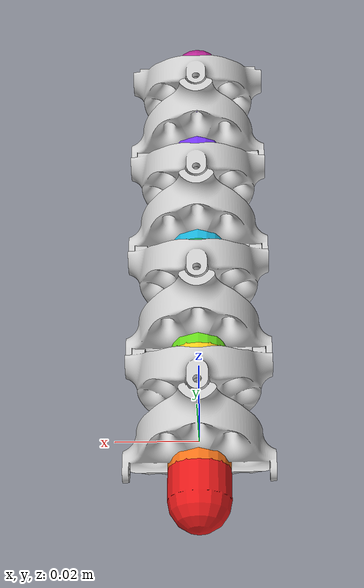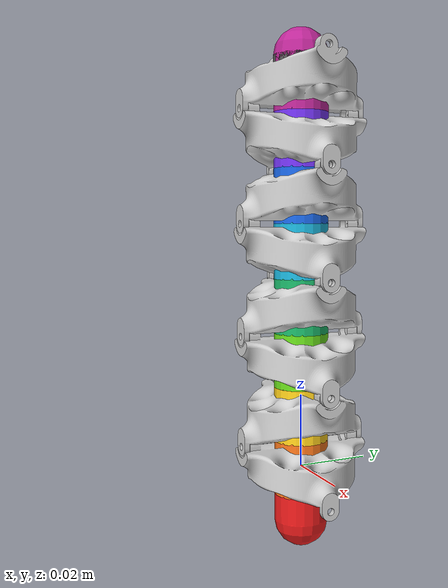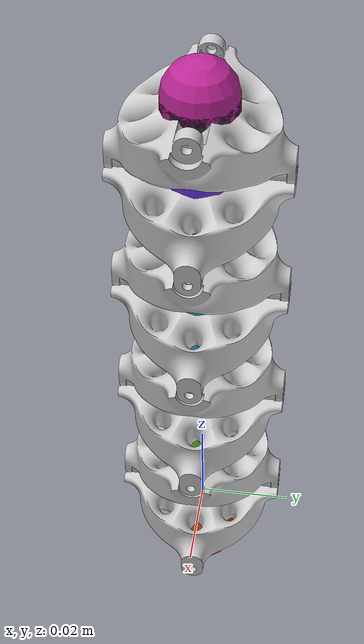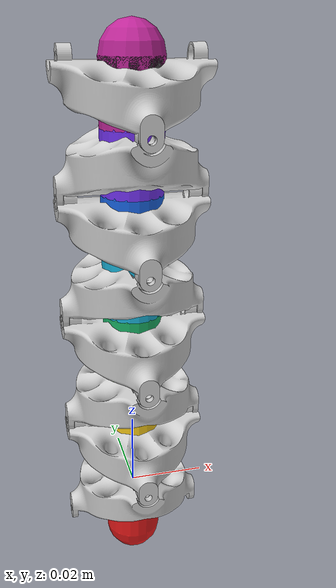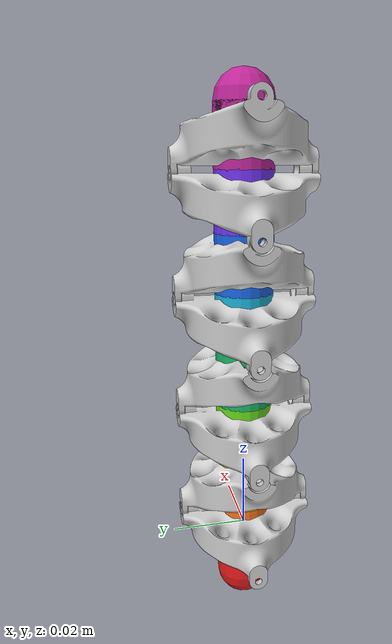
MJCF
<?xml version="1.0"?>
<mujoco model="continuum_robot">
    <compiler angle="degree" coordinate="local"/>
    <option integrator="Euler" timestep="0.001"/>

    <default>
      <joint limited="true" range="-4 4" stiffness="0.04" damping="0.005" armature="0.0001"/>

    <!-- 백본(캡슐): 서로는 비충돌, 프록시와만 충돌 -->
      <geom type="capsule" size="0.0075" density="1000"
          friction="0.6 0.05 0.002"
          rgba="0.8 0.8 0.8 1"
          contype="2" conaffinity="1"
          margin="0.001" solimp="0.9 0.995 0.001" solref="0.02 1"/>

      <!-- 프록시(충돌 전용 슬리브) 공통 속성 -->
      <default class="proxy">
        <geom type="cylinder"
              contype="1" conaffinity="2"
              margin="0.001" solimp="0.9 0.995 0.001" solref="0.02 1"
              rgba="0.2 0.8 1 0.15" group="3"/> <!-- 보기 불편하면 Group 3 끄기 -->
      </default>

      <!-- STL(시각용) 공통 속성: 충돌 off -->
      <default class="comp">
        <geom contype="0" conaffinity="0"/>
      </default>
    </default>

    <asset>
      <mesh name="mesh_component2" file="meshes/mesh_component2.stl" scale="0.001 0.001 0.001" /> <!-- The mesh file for the component -->
    </asset>
    <worldbody>
      <body name="comp_root" pos="0 0 0" quat="1 0 0 0">
        <geom name="geom_comp_root" class="comp" type="mesh" mesh="mesh_component2" pos="0 0 0"/>
        <joint name="rotation_root" type="hinge" axis="1 0 0" pos="0.01794 0 -0.0075" />
        <inertial mass="0.034962578305385045" pos="-7.472585541467528e-08 7.901881324749933e-09 0.00013813391178014084" fullinertia="3.055182113221844e-06 2.848652002682884e-06 5.213750324900917e-06 -4.694970745810055e-12 -1.2612174129223041e-11 1.8838018378797825e-12" />
        <geom class="proxy" name="proxy_root_0" type="capsule" size="0.0008 0.004" pos=" 0.007500  0.000000 0"/>
        <geom class="proxy" name="proxy_root_1" type="capsule" size="0.0008 0.004" pos=" 0.005303  0.005303 0"/>
        <geom class="proxy" name="proxy_root_2" type="capsule" size="0.0008 0.004" pos=" 0.000000  0.007500 0"/>
        <geom class="proxy" name="proxy_root_3" type="capsule" size="0.0008 0.004" pos="-0.005303  0.005303 0"/>
        <geom class="proxy" name="proxy_root_4" type="capsule" size="0.0008 0.004" pos="-0.007500  0.000000 0"/>
        <geom class="proxy" name="proxy_root_5" type="capsule" size="0.0008 0.004" pos="-0.005303 -0.005303 0"/>
        <geom class="proxy" name="proxy_root_6" type="capsule" size="0.0008 0.004" pos=" 0.000000 -0.007500 0"/>
        <geom class="proxy" name="proxy_root_7" type="capsule" size="0.0008 0.004" pos=" 0.005303 -0.005303 0"/>

        <body name="comp_1" pos="0 0 0.015" quat="0.70710678 0 0 -0.70710678">
          <joint name="rotation_1" type="hinge" axis="1 0 0" pos="0.01794 0 -0.0075" /> <!--joint axis: 이 조인트가 어느 방향으로 움직이는지, pos: 조인트의 앵커(회전/이동이 일어나는 점) 위치-->
          <geom name="geom_comp_1" class="comp" type="mesh" mesh="mesh_component2" pos="0 0 0" quat="1 0 0 0"/>
          <inertial mass="0.034962578305385045" pos="-7.472585541454448e-08 7.901881324746635e-09 0.00013813391178014496" fullinertia="3.0551821132218284e-06 2.8486520026829268e-06 5.213750324900907e-06 -4.694970745810085e-12 -1.2612174121400085e-11 1.8838018376833885e-12" />
          <geom class="proxy" name="proxy_1_0" type="capsule" size="0.0008 0.004" pos=" 0.007500  0.000000 0"/>
          <geom class="proxy" name="proxy_1_1" type="capsule" size="0.0008 0.004" pos=" 0.005303  0.005303 0"/>
          <geom class="proxy" name="proxy_1_2" type="capsule" size="0.0008 0.004" pos=" 0.000000  0.007500 0"/>
          <geom class="proxy" name="proxy_1_3" type="capsule" size="0.0008 0.004" pos="-0.005303  0.005303 0"/>
          <geom class="proxy" name="proxy_1_4" type="capsule" size="0.0008 0.004" pos="-0.007500  0.000000 0"/>
          <geom class="proxy" name="proxy_1_5" type="capsule" size="0.0008 0.004" pos="-0.005303 -0.005303 0"/>
          <geom class="proxy" name="proxy_1_6" type="capsule" size="0.0008 0.004" pos=" 0.000000 -0.007500 0"/>
          <geom class="proxy" name="proxy_1_7" type="capsule" size="0.0008 0.004" pos=" 0.005303 -0.005303 0"/>

          <body name="comp_2" pos="0 0 0.015" quat="0.70710678 0 0 0.70710678">
            <joint name="rotation_2" type="hinge" axis="1 0 0" pos="0.01794 0 -0.0075" />
            <geom name="geom_comp_2" class="comp" type="mesh" mesh="mesh_component2" pos="0 0 0" quat="1 0 0 0"/>
            <inertial mass="0.034962578305385045" pos="-7.472585541454448e-08 7.901881324746635e-09 0.00013813391178014273" fullinertia="3.0551821132218267e-06 2.84865200268293e-06 5.213750324900907e-06 -4.694970745810085e-12 -1.2612174121400085e-11 1.8838018376833877e-12" />
            <geom class="proxy" name="proxy_2_0" type="capsule" size="0.0008 0.004" pos=" 0.007500  0.000000 0"/>
            <geom class="proxy" name="proxy_2_1" type="capsule" size="0.0008 0.004" pos=" 0.005303  0.005303 0"/>
            <geom class="proxy" name="proxy_2_2" type="capsule" size="0.0008 0.004" pos=" 0.000000  0.007500 0"/>
            <geom class="proxy" name="proxy_2_3" type="capsule" size="0.0008 0.004" pos="-0.005303  0.005303 0"/>
            <geom class="proxy" name="proxy_2_4" type="capsule" size="0.0008 0.004" pos="-0.007500  0.000000 0"/>
            <geom class="proxy" name="proxy_2_5" type="capsule" size="0.0008 0.004" pos="-0.005303 -0.005303 0"/>
            <geom class="proxy" name="proxy_2_6" type="capsule" size="0.0008 0.004" pos=" 0.000000 -0.007500 0"/>
            <geom class="proxy" name="proxy_2_7" type="capsule" size="0.0008 0.004" pos=" 0.005303 -0.005303 0"/>

            <body name="comp_3" pos="0 0 0.015" quat="0.70710678 0 0 -0.70710678">
              <joint name="rotation_3" type="hinge" axis="1 0 0" pos="0.01794 0 -0.0075" />
              <geom name="geom_comp_3" class="comp" type="mesh" mesh="mesh_component2" pos="0 0 0" quat="1 0 0 0"/>
              <inertial mass="0.034962578305385045" pos="-7.47258554145445e-08 7.901881324746637e-09 0.00013813391178014273" fullinertia="3.0551821132218403e-06 2.84865200268293e-06 5.213750324900907e-06 -4.694970745810085e-12 -1.2612174121400085e-11 1.883801837683387e-12" />
              <geom class="proxy" name="proxy_3_0" type="capsule" size="0.0008 0.004" pos=" 0.007500  0.000000 0"/>
              <geom class="proxy" name="proxy_3_1" type="capsule" size="0.0008 0.004" pos=" 0.005303  0.005303 0"/>
              <geom class="proxy" name="proxy_3_2" type="capsule" size="0.0008 0.004" pos=" 0.000000  0.007500 0"/>
              <geom class="proxy" name="proxy_3_3" type="capsule" size="0.0008 0.004" pos="-0.005303  0.005303 0"/>
              <geom class="proxy" name="proxy_3_4" type="capsule" size="0.0008 0.004" pos="-0.007500  0.000000 0"/>
              <geom class="proxy" name="proxy_3_5" type="capsule" size="0.0008 0.004" pos="-0.005303 -0.005303 0"/>
              <geom class="proxy" name="proxy_3_6" type="capsule" size="0.0008 0.004" pos=" 0.000000 -0.007500 0"/>
              <geom class="proxy" name="proxy_3_7" type="capsule" size="0.0008 0.004" pos=" 0.005303 -0.005303 0"/>

              <body name="comp_4" pos="0 0 0.015" quat="0.70710678 0 0 0.70710678">
                <joint name="rotation_4" type="hinge" axis="1 0 0" pos="0.01794 0 -0.0075" />
                <geom name="geom_comp_4" class="comp" type="mesh" mesh="mesh_component2" pos="0 0 0" quat="1 0 0 0"/>
                <inertial mass="0.034962578305385045" pos="-7.472585541454448e-08 7.901881324015413e-09 0.00013813391178015038" fullinertia="3.055182113221813e-06 2.8486520026828874e-06 5.213750324900898e-06 -4.69497074581008e-12 -1.2612174121400061e-11 1.8838018335764905e-12" />
                <geom class="proxy" name="proxy_4_0" type="capsule" size="0.0008 0.004" pos=" 0.007500  0.000000 0"/>
                <geom class="proxy" name="proxy_4_1" type="capsule" size="0.0008 0.004" pos=" 0.005303  0.005303 0"/>
                <geom class="proxy" name="proxy_4_2" type="capsule" size="0.0008 0.004" pos=" 0.000000  0.007500 0"/>
                <geom class="proxy" name="proxy_4_3" type="capsule" size="0.0008 0.004" pos="-0.005303  0.005303 0"/>
                <geom class="proxy" name="proxy_4_4" type="capsule" size="0.0008 0.004" pos="-0.007500  0.000000 0"/>
                <geom class="proxy" name="proxy_4_5" type="capsule" size="0.0008 0.004" pos="-0.005303 -0.005303 0"/>
                <geom class="proxy" name="proxy_4_6" type="capsule" size="0.0008 0.004" pos=" 0.000000 -0.007500 0"/>
                <geom class="proxy" name="proxy_4_7" type="capsule" size="0.0008 0.004" pos=" 0.005303 -0.005303 0"/>

                <body name="comp_5" pos="0 0 0.015" quat="0.70710678 0 0 -0.70710678">
                  <joint name="rotation_5" type="hinge" axis="1 0 0" pos="0.01794 0 -0.0075" />
                  <geom name="geom_comp_5" class="comp" type="mesh" mesh="mesh_component2" pos="0 0 0" quat="1 0 0 0"/>
                  <inertial mass="0.034962578305385045" pos="-7.472585541496629e-08 7.901881324746634e-09 0.0001381339117801356" fullinertia="3.0551821132218623e-06 2.8486520026829437e-06 5.213750324900904e-06 -4.694970745810083e-12 -1.261217412324965e-11 1.883801837683382e-12" />
                  <geom class="proxy" name="proxy_5_0" type="capsule" size="0.0008 0.004" pos=" 0.007500  0.000000 0"/>
                  <geom class="proxy" name="proxy_5_1" type="capsule" size="0.0008 0.004" pos=" 0.005303  0.005303 0"/>
                  <geom class="proxy" name="proxy_5_2" type="capsule" size="0.0008 0.004" pos=" 0.000000  0.007500 0"/>
                  <geom class="proxy" name="proxy_5_3" type="capsule" size="0.0008 0.004" pos="-0.005303  0.005303 0"/>
                  <geom class="proxy" name="proxy_5_4" type="capsule" size="0.0008 0.004" pos="-0.007500  0.000000 0"/>
                  <geom class="proxy" name="proxy_5_5" type="capsule" size="0.0008 0.004" pos="-0.005303 -0.005303 0"/>
                  <geom class="proxy" name="proxy_5_6" type="capsule" size="0.0008 0.004" pos=" 0.000000 -0.007500 0"/>
                  <geom class="proxy" name="proxy_5_7" type="capsule" size="0.0008 0.004" pos=" 0.005303 -0.005303 0"/>

                  <body name="comp_6" pos="0 0 0.015" quat="0.70710678 0 0 0.70710678">
                    <joint name="rotation_6" type="hinge" axis="1 0 0" pos="0.01794 0 -0.0075" />
                    <geom name="geom_comp_6" class="comp" type="mesh" mesh="mesh_component2" pos="0 0 0" quat="1 0 0 0"/>
                    <inertial mass="0.034962578305385045" pos="-7.472585541454451e-08 7.901881323397079e-09 0.00013813391178015924" fullinertia="3.0551821132217047e-06 2.8486520026828886e-06 5.213750324900898e-06 -4.6949707458100755e-12 -1.261217412140013e-11 1.883801832570639e-12" />
                    <geom class="proxy" name="proxy_6_0" type="capsule" size="0.0008 0.004" pos=" 0.007500  0.000000 0"/>
                    <geom class="proxy" name="proxy_6_1" type="capsule" size="0.0008 0.004" pos=" 0.005303  0.005303 0"/>
                    <geom class="proxy" name="proxy_6_2" type="capsule" size="0.0008 0.004" pos=" 0.000000  0.007500 0"/>
                    <geom class="proxy" name="proxy_6_3" type="capsule" size="0.0008 0.004" pos="-0.005303  0.005303 0"/>
                    <geom class="proxy" name="proxy_6_4" type="capsule" size="0.0008 0.004" pos="-0.007500  0.000000 0"/>
                    <geom class="proxy" name="proxy_6_5" type="capsule" size="0.0008 0.004" pos="-0.005303 -0.005303 0"/>
                    <geom class="proxy" name="proxy_6_6" type="capsule" size="0.0008 0.004" pos=" 0.000000 -0.007500 0"/>
                    <geom class="proxy" name="proxy_6_7" type="capsule" size="0.0008 0.004" pos=" 0.005303 -0.005303 0"/>

                    <body name="comp_7" pos="0 0 0.015" quat="0.70710678 0 0 -0.70710678">
                        <joint name="rotation_7" type="hinge" axis="1 0 0" pos="0.01794 0 -0.0075" />
                        <geom name="geom_comp_7" class="comp" type="mesh" mesh="mesh_component2" pos="0 0 0" quat="1 0 0 0"/>
                        <inertial mass="0.034962578305385045" pos="-7.472585541316211e-08 7.901881324746632e-09 0.00013813391178015339" fullinertia="3.0551821132217585e-06 2.8486520026828353e-06 5.213750324900921e-06 -4.6949707458100884e-12 -1.2612174111020612e-11 1.883801837683386e-12" />
                        <geom class="proxy" name="proxy_7_0" type="capsule" size="0.0008 0.004" pos=" 0.007500  0.000000 0"/>
                        <geom class="proxy" name="proxy_7_1" type="capsule" size="0.0008 0.004" pos=" 0.005303  0.005303 0"/>
                        <geom class="proxy" name="proxy_7_2" type="capsule" size="0.0008 0.004" pos=" 0.000000  0.007500 0"/>
                        <geom class="proxy" name="proxy_7_3" type="capsule" size="0.0008 0.004" pos="-0.005303  0.005303 0"/>
                        <geom class="proxy" name="proxy_7_4" type="capsule" size="0.0008 0.004" pos="-0.007500  0.000000 0"/>
                        <geom class="proxy" name="proxy_7_5" type="capsule" size="0.0008 0.004" pos="-0.005303 -0.005303 0"/>
                        <geom class="proxy" name="proxy_7_6" type="capsule" size="0.0008 0.004" pos=" 0.000000 -0.007500 0"/>
                        <geom class="proxy" name="proxy_7_7" type="capsule" size="0.0008 0.004" pos=" 0.005303 -0.005303 0"/>
                    </body>
                  </body>
                </body>
              </body>
            </body>
          </body>
        </body>
      </body>

      <!-- ===================== Backbone =====================-->
      <body name="base" pos="0 0 0">
      <!-- ================= SEGMENT 1 ================= -->
        <body name="seg1_base" pos="0 0 -0.015">
          <body name="seg1_v1" pos="0 0 0">
            <geom name="seg1_v1_geom" fromto="0 0 0  0 0 0.0075" rgba="0.90 0.10 0.10 1"/>

            <body name="seg1_v2" pos="0 0 0.0075">
              <geom name="seg1_v2_geom" fromto="0 0 0  0 0 0.015" rgba="0.95 0.45 0.10 1"/>
              <joint name="seg1_j2_pitch" type="hinge" axis="-1 0 0"/>

              <body name="seg1_v3" pos="0 0 0.015">
                <geom name="seg1_v3_geom" fromto="0 0 0  0 0 0.015" rgba="0.98 0.80 0.10 1"/>
                <joint name="seg1_j3_yaw" type="hinge" axis="0 -1 0"/>

                <body name="seg1_v4" pos="0 0 0.015">
                  <geom name="seg1_v4_geom" fromto="0 0 0  0 0 0.015" rgba="0.40 0.85 0.10 1"/>
                  <joint name="seg1_j4_pitch" type="hinge" axis="-1 0 0"/>

                <body name="seg1_v5" pos="0 0 0.015">
                  <geom name="seg1_v5_geom" fromto="0 0 0  0 0 0.015" rgba="0.10 0.70 0.40 1"/>
                  <joint name="seg1_j5_yaw" type="hinge" axis="0 -1 0"/>

                  <body name="seg1_v6" pos="0 0 0.015">
                    <geom name="seg1_v6_geom" fromto="0 0 0  0 0 0.015" rgba="0.10 0.70 0.85 1"/>
                    <joint name="seg1_j6_pitch" type="hinge" axis="-1 0 0"/>

                    <body name="seg1_v7" pos="0 0 0.015">
                      <geom name="seg1_v7_geom" fromto="0 0 0  0 0 0.015" rgba="0.10 0.40 0.90 1"/>
                      <joint name="seg1_j7_yaw" type="hinge" axis="0 -1 0"/>

                      <body name="seg1_v8" pos="0 0 0.015">
                        <geom name="seg1_v8_geom" fromto="0 0 0  0 0 0.015" rgba="0.45 0.20 0.95 1"/>
                        <joint name="seg1_j8_pitch" type="hinge" axis="-1 0 0"/>

                        <body name="seg1_v9" pos="0 0 0.015" >
                          <geom name="seg1_v9_geom" fromto="0 0 0  0 0 0.015" rgba="0.75 0.15 0.60 1"/>
                          <joint name="seg1_j9_yaw" type="hinge" axis="0 -1 0"/>

                          <body name="seg1_v10" pos="0 0 0.0075">
                            <geom name="seg1_v10_geom" fromto="0 0 0  0 0 0.0075" rgba="0.35 0.35 0.35 1"/>
                          </body>
                        </body>
                      </body>
                    </body>
                  </body>
                </body>
              </body>
            </body>
          </body>
        </body>
      </body>
    </body>
  </worldbody>
  <actuator>

    <position name="u_seg1_j2" joint="seg1_j2_pitch" kp="100" ctrlrange="-0.6109 0.6109"/>
    <position name="u_seg1_j3" joint="seg1_j3_yaw" kp="100" ctrlrange="-0.6109 0.6109"/>
    <position name="u_seg1_j4" joint="seg1_j4_pitch" kp="100" ctrlrange="-0.6109 0.6109"/>
    <position name="u_seg1_j5" joint="seg1_j5_yaw" kp="100" ctrlrange="-0.6109 0.6109"/>
    <position name="u_seg1_j6" joint="seg1_j6_pitch" kp="100" ctrlrange="-0.6109 0.6109"/>
    <position name="u_seg1_j7" joint="seg1_j7_yaw" kp="100" ctrlrange="-0.6109 0.6109"/>
    <position name="u_seg1_j8" joint="seg1_j8_pitch" kp="100" ctrlrange="-0.6109 0.6109"/>
    <position name="u_seg1_j9" joint="seg1_j9_yaw" kp="100" ctrlrange="-0.6109 0.6109"/>

  </actuator>
</mujoco>

<!-- ================= SEGMENT 2 ================= -->
                                                                              <!-- ================= SEGMENT 3 ================= -->
